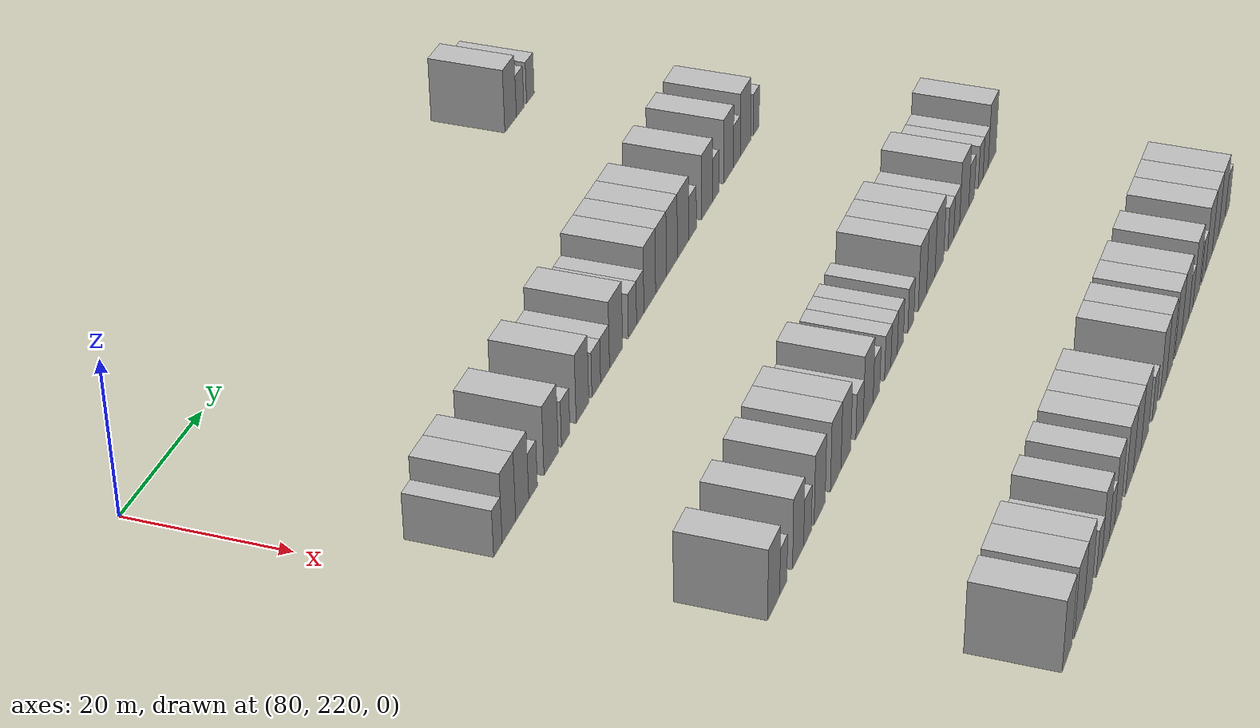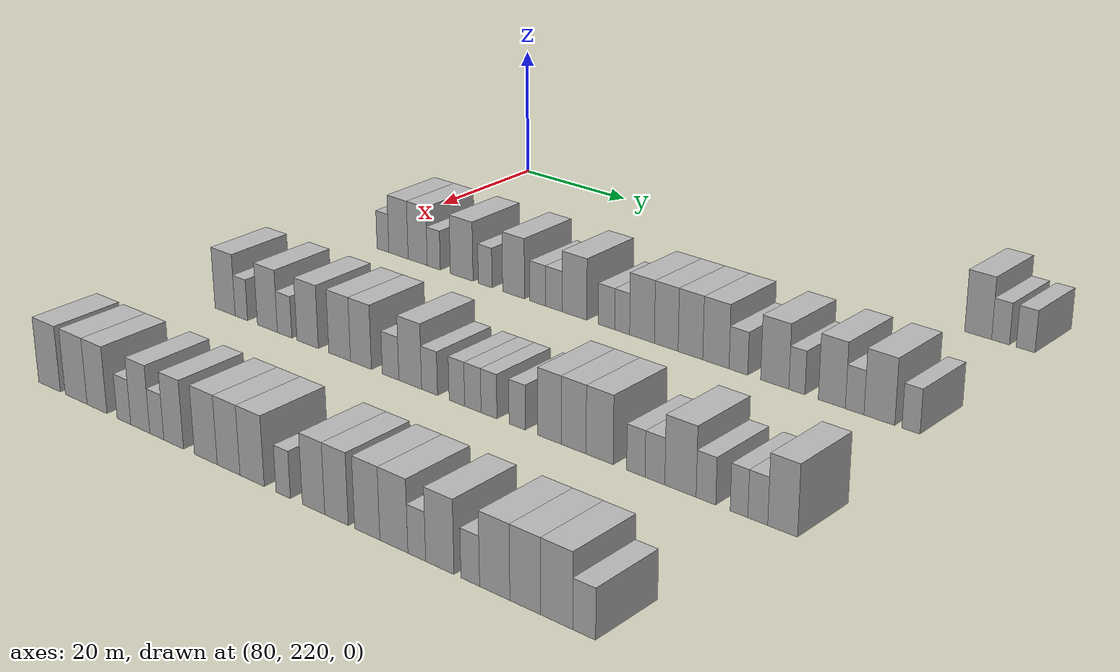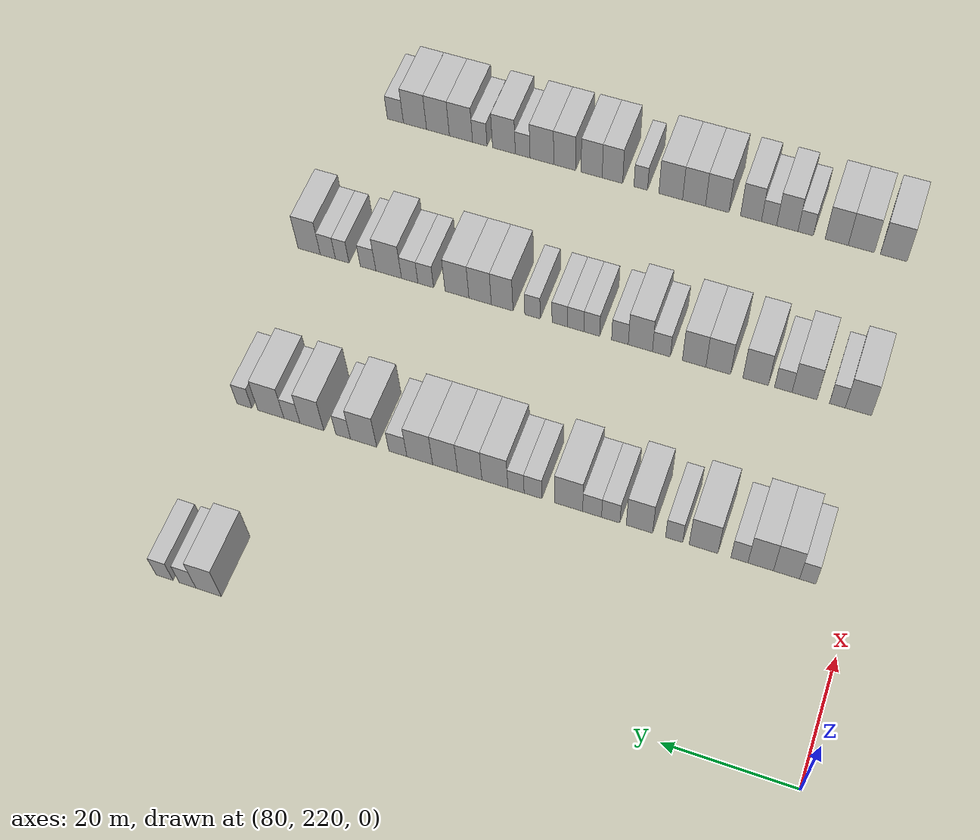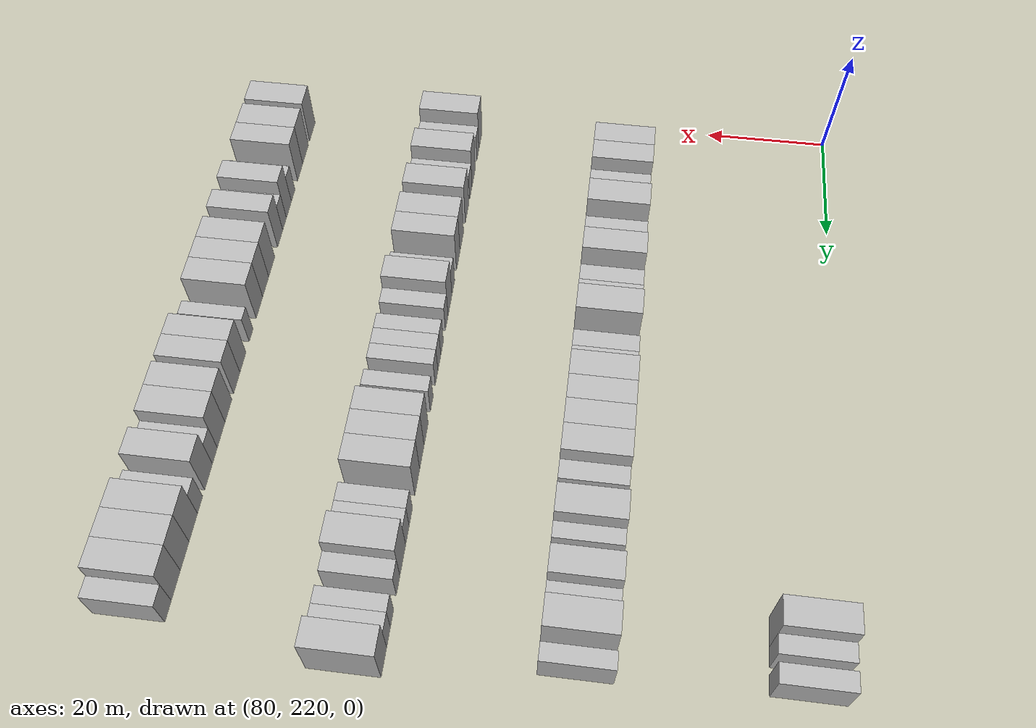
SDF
<sdf version="1.6">
 <world name="default">
  <model name="building_647">
   <static>1</static>
   <pose>85.0000 308.9514 0 0.000000 0.000000 0.000000</pose>
   <link name="link">
    <pose>0 0 4.50 0 0 0</pose>
    <collision name="collision"><geometry><box><size>10.0000 4.0807 9.0000</size></box></geometry></collision>
    <visual name="visual">
     <cast_shadows>0</cast_shadows>
     <geometry><box><size>10.0000 4.0807 9.0000</size></box></geometry>
     <material>
      <script>
       <uri>model://HANNAS_wall/materials/scripts</uri>
       <uri>model://HANNAS_wall/materials/textures</uri>
       <name>vrc/HANNAS_wall</name>
      </script>
     </material>
    </visual>
   </link>
  </model>
  <model name="building_648">
   <static>1</static>
   <pose>85.0000 312.3240 0 0.000000 0.000000 0.000000</pose>
   <link name="link">
    <pose>0 0 3.00 0 0 0</pose>
    <collision name="collision"><geometry><box><size>10.0000 2.6644 6.0000</size></box></geometry></collision>
    <visual name="visual">
     <cast_shadows>0</cast_shadows>
     <geometry><box><size>10.0000 2.6644 6.0000</size></box></geometry>
     <material>
      <script>
       <uri>model://HANNAS_wall/materials/scripts</uri>
       <uri>model://HANNAS_wall/materials/textures</uri>
       <name>vrc/HANNAS_wall</name>
      </script>
     </material>
    </visual>
   </link>
  </model>
  <model name="building_649">
   <static>1</static>
   <pose>85.0000 316.0347 0 0.000000 0.000000 0.000000</pose>
   <link name="link">
    <pose>0 0 3.00 0 0 0</pose>
    <collision name="collision"><geometry><box><size>10.0000 2.7570 6.0000</size></box></geometry></collision>
    <visual name="visual">
     <cast_shadows>0</cast_shadows>
     <geometry><box><size>10.0000 2.7570 6.0000</size></box></geometry>
     <material>
      <script>
       <uri>model://HANNAS_wall/materials/scripts</uri>
       <uri>model://HANNAS_wall/materials/textures</uri>
       <name>vrc/HANNAS_wall</name>
      </script>
     </material>
    </visual>
   </link>
  </model>
  <model name="building_856">
   <static>1</static>
   <pose>115.0000 226.7632 0 0.000000 0.000000 0.000000</pose>
   <link name="link">
    <pose>0 0 3.00 0 0 0</pose>
    <collision name="collision"><geometry><box><size>10.0000 2.4552 6.0000</size></box></geometry></collision>
    <visual name="visual">
     <cast_shadows>0</cast_shadows>
     <geometry><box><size>10.0000 2.4552 6.0000</size></box></geometry>
     <material>
      <script>
       <uri>model://HANNAS_wall/materials/scripts</uri>
       <uri>model://HANNAS_wall/materials/textures</uri>
       <name>vrc/HANNAS_wall</name>
      </script>
     </material>
    </visual>
   </link>
  </model>
  <model name="building_857">
   <static>1</static>
   <pose>115.0000 229.9746 0 0.000000 0.000000 0.000000</pose>
   <link name="link">
    <pose>0 0 4.50 0 0 0</pose>
    <collision name="collision"><geometry><box><size>10.0000 3.9674 9.0000</size></box></geometry></collision>
    <visual name="visual">
     <cast_shadows>0</cast_shadows>
     <geometry><box><size>10.0000 3.9674 9.0000</size></box></geometry>
     <material>
      <script>
       <uri>model://HANNAS_wall/materials/scripts</uri>
       <uri>model://HANNAS_wall/materials/textures</uri>
       <name>vrc/HANNAS_wall</name>
      </script>
     </material>
    </visual>
   </link>
  </model>
  <model name="building_858">
   <static>1</static>
   <pose>115.0000 233.8958 0 0.000000 0.000000 0.000000</pose>
   <link name="link">
    <pose>0 0 4.50 0 0 0</pose>
    <collision name="collision"><geometry><box><size>10.0000 3.8749 9.0000</size></box></geometry></collision>
    <visual name="visual">
     <cast_shadows>0</cast_shadows>
     <geometry><box><size>10.0000 3.8749 9.0000</size></box></geometry>
     <material>
      <script>
       <uri>model://HANNAS_wall/materials/scripts</uri>
       <uri>model://HANNAS_wall/materials/textures</uri>
       <name>vrc/HANNAS_wall</name>
      </script>
     </material>
    </visual>
   </link>
  </model>
  <model name="building_859">
   <static>1</static>
   <pose>115.0000 237.1375 0 0.000000 0.000000 0.000000</pose>
   <link name="link">
    <pose>0 0 3.00 0 0 0</pose>
    <collision name="collision"><geometry><box><size>10.0000 2.6086 6.0000</size></box></geometry></collision>
    <visual name="visual">
     <cast_shadows>0</cast_shadows>
     <geometry><box><size>10.0000 2.6086 6.0000</size></box></geometry>
     <material>
      <script>
       <uri>model://HANNAS_wall/materials/scripts</uri>
       <uri>model://HANNAS_wall/materials/textures</uri>
       <name>vrc/HANNAS_wall</name>
      </script>
     </material>
    </visual>
   </link>
  </model>
  <model name="building_860">
   <static>1</static>
   <pose>115.0000 242.6604 0 0.000000 0.000000 0.000000</pose>
   <link name="link">
    <pose>0 0 4.50 0 0 0</pose>
    <collision name="collision"><geometry><box><size>10.0000 4.4372 9.0000</size></box></geometry></collision>
    <visual name="visual">
     <cast_shadows>0</cast_shadows>
     <geometry><box><size>10.0000 4.4372 9.0000</size></box></geometry>
     <material>
      <script>
       <uri>model://HANNAS_wall/materials/scripts</uri>
       <uri>model://HANNAS_wall/materials/textures</uri>
       <name>vrc/HANNAS_wall</name>
      </script>
     </material>
    </visual>
   </link>
  </model>
  <model name="building_861">
   <static>1</static>
   <pose>115.0000 247.2093 0 0.000000 0.000000 0.000000</pose>
   <link name="link">
    <pose>0 0 3.00 0 0 0</pose>
    <collision name="collision"><geometry><box><size>10.0000 2.6608 6.0000</size></box></geometry></collision>
    <visual name="visual">
     <cast_shadows>0</cast_shadows>
     <geometry><box><size>10.0000 2.6608 6.0000</size></box></geometry>
     <material>
      <script>
       <uri>model://HANNAS_wall/materials/scripts</uri>
       <uri>model://HANNAS_wall/materials/textures</uri>
       <name>vrc/HANNAS_wall</name>
      </script>
     </material>
    </visual>
   </link>
  </model>
  <model name="building_862">
   <static>1</static>
   <pose>115.0000 252.5965 0 0.000000 0.000000 0.000000</pose>
   <link name="link">
    <pose>0 0 4.50 0 0 0</pose>
    <collision name="collision"><geometry><box><size>10.0000 4.1137 9.0000</size></box></geometry></collision>
    <visual name="visual">
     <cast_shadows>0</cast_shadows>
     <geometry><box><size>10.0000 4.1137 9.0000</size></box></geometry>
     <material>
      <script>
       <uri>model://HANNAS_wall/materials/scripts</uri>
       <uri>model://HANNAS_wall/materials/textures</uri>
       <name>vrc/HANNAS_wall</name>
      </script>
     </material>
    </visual>
   </link>
  </model>
  <model name="building_863">
   <static>1</static>
   <pose>115.0000 257.0937 0 0.000000 0.000000 0.000000</pose>
   <link name="link">
    <pose>0 0 3.00 0 0 0</pose>
    <collision name="collision"><geometry><box><size>10.0000 2.8806 6.0000</size></box></geometry></collision>
    <visual name="visual">
     <cast_shadows>0</cast_shadows>
     <geometry><box><size>10.0000 2.8806 6.0000</size></box></geometry>
     <material>
      <script>
       <uri>model://HANNAS_wall/materials/scripts</uri>
       <uri>model://HANNAS_wall/materials/textures</uri>
       <name>vrc/HANNAS_wall</name>
      </script>
     </material>
    </visual>
   </link>
  </model>
  <model name="building_864">
   <static>1</static>
   <pose>115.0000 260.0220 0 0.000000 0.000000 0.000000</pose>
   <link name="link">
    <pose>0 0 3.00 0 0 0</pose>
    <collision name="collision"><geometry><box><size>10.0000 2.9761 6.0000</size></box></geometry></collision>
    <visual name="visual">
     <cast_shadows>0</cast_shadows>
     <geometry><box><size>10.0000 2.9761 6.0000</size></box></geometry>
     <material>
      <script>
       <uri>model://HANNAS_wall/materials/scripts</uri>
       <uri>model://HANNAS_wall/materials/textures</uri>
       <name>vrc/HANNAS_wall</name>
      </script>
     </material>
    </visual>
   </link>
  </model>
  <model name="building_865">
   <static>1</static>
   <pose>115.0000 263.7411 0 0.000000 0.000000 0.000000</pose>
   <link name="link">
    <pose>0 0 4.50 0 0 0</pose>
    <collision name="collision"><geometry><box><size>10.0000 4.4622 9.0000</size></box></geometry></collision>
    <visual name="visual">
     <cast_shadows>0</cast_shadows>
     <geometry><box><size>10.0000 4.4622 9.0000</size></box></geometry>
     <material>
      <script>
       <uri>model://HANNAS_wall/materials/scripts</uri>
       <uri>model://HANNAS_wall/materials/textures</uri>
       <name>vrc/HANNAS_wall</name>
      </script>
     </material>
    </visual>
   </link>
  </model>
  <model name="building_866">
   <static>1</static>
   <pose>115.0000 269.4025 0 0.000000 0.000000 0.000000</pose>
   <link name="link">
    <pose>0 0 3.00 0 0 0</pose>
    <collision name="collision"><geometry><box><size>10.0000 2.8605 6.0000</size></box></geometry></collision>
    <visual name="visual">
     <cast_shadows>0</cast_shadows>
     <geometry><box><size>10.0000 2.8605 6.0000</size></box></geometry>
     <material>
      <script>
       <uri>model://HANNAS_wall/materials/scripts</uri>
       <uri>model://HANNAS_wall/materials/textures</uri>
       <name>vrc/HANNAS_wall</name>
      </script>
     </material>
    </visual>
   </link>
  </model>
  <model name="building_867">
   <static>1</static>
   <pose>115.0000 272.1281 0 0.000000 0.000000 0.000000</pose>
   <link name="link">
    <pose>0 0 3.00 0 0 0</pose>
    <collision name="collision"><geometry><box><size>10.0000 2.5907 6.0000</size></box></geometry></collision>
    <visual name="visual">
     <cast_shadows>0</cast_shadows>
     <geometry><box><size>10.0000 2.5907 6.0000</size></box></geometry>
     <material>
      <script>
       <uri>model://HANNAS_wall/materials/scripts</uri>
       <uri>model://HANNAS_wall/materials/textures</uri>
       <name>vrc/HANNAS_wall</name>
      </script>
     </material>
    </visual>
   </link>
  </model>
  <model name="building_868">
   <static>1</static>
   <pose>115.0000 275.5215 0 0.000000 0.000000 0.000000</pose>
   <link name="link">
    <pose>0 0 4.50 0 0 0</pose>
    <collision name="collision"><geometry><box><size>10.0000 4.1961 9.0000</size></box></geometry></collision>
    <visual name="visual">
     <cast_shadows>0</cast_shadows>
     <geometry><box><size>10.0000 4.1961 9.0000</size></box></geometry>
     <material>
      <script>
       <uri>model://HANNAS_wall/materials/scripts</uri>
       <uri>model://HANNAS_wall/materials/textures</uri>
       <name>vrc/HANNAS_wall</name>
      </script>
     </material>
    </visual>
   </link>
  </model>
  <model name="building_869">
   <static>1</static>
   <pose>115.0000 279.5960 0 0.000000 0.000000 0.000000</pose>
   <link name="link">
    <pose>0 0 4.50 0 0 0</pose>
    <collision name="collision"><geometry><box><size>10.0000 3.9527 9.0000</size></box></geometry></collision>
    <visual name="visual">
     <cast_shadows>0</cast_shadows>
     <geometry><box><size>10.0000 3.9527 9.0000</size></box></geometry>
     <material>
      <script>
       <uri>model://HANNAS_wall/materials/scripts</uri>
       <uri>model://HANNAS_wall/materials/textures</uri>
       <name>vrc/HANNAS_wall</name>
      </script>
     </material>
    </visual>
   </link>
  </model>
  <model name="building_870">
   <static>1</static>
   <pose>115.0000 283.5962 0 0.000000 0.000000 0.000000</pose>
   <link name="link">
    <pose>0 0 4.50 0 0 0</pose>
    <collision name="collision"><geometry><box><size>10.0000 4.0478 9.0000</size></box></geometry></collision>
    <visual name="visual">
     <cast_shadows>0</cast_shadows>
     <geometry><box><size>10.0000 4.0478 9.0000</size></box></geometry>
     <material>
      <script>
       <uri>model://HANNAS_wall/materials/scripts</uri>
       <uri>model://HANNAS_wall/materials/textures</uri>
       <name>vrc/HANNAS_wall</name>
      </script>
     </material>
    </visual>
   </link>
  </model>
  <model name="building_871">
   <static>1</static>
   <pose>115.0000 287.7335 0 0.000000 0.000000 0.000000</pose>
   <link name="link">
    <pose>0 0 4.50 0 0 0</pose>
    <collision name="collision"><geometry><box><size>10.0000 4.2268 9.0000</size></box></geometry></collision>
    <visual name="visual">
     <cast_shadows>0</cast_shadows>
     <geometry><box><size>10.0000 4.2268 9.0000</size></box></geometry>
     <material>
      <script>
       <uri>model://HANNAS_wall/materials/scripts</uri>
       <uri>model://HANNAS_wall/materials/textures</uri>
       <name>vrc/HANNAS_wall</name>
      </script>
     </material>
    </visual>
   </link>
  </model>
  <model name="building_872">
   <static>1</static>
   <pose>115.0000 291.3306 0 0.000000 0.000000 0.000000</pose>
   <link name="link">
    <pose>0 0 3.00 0 0 0</pose>
    <collision name="collision"><geometry><box><size>10.0000 2.9673 6.0000</size></box></geometry></collision>
    <visual name="visual">
     <cast_shadows>0</cast_shadows>
     <geometry><box><size>10.0000 2.9673 6.0000</size></box></geometry>
     <material>
      <script>
       <uri>model://HANNAS_wall/materials/scripts</uri>
       <uri>model://HANNAS_wall/materials/textures</uri>
       <name>vrc/HANNAS_wall</name>
      </script>
     </material>
    </visual>
   </link>
  </model>
  <model name="building_873">
   <static>1</static>
   <pose>115.0000 296.9911 0 0.000000 0.000000 0.000000</pose>
   <link name="link">
    <pose>0 0 4.50 0 0 0</pose>
    <collision name="collision"><geometry><box><size>10.0000 4.3538 9.0000</size></box></geometry></collision>
    <visual name="visual">
     <cast_shadows>0</cast_shadows>
     <geometry><box><size>10.0000 4.3538 9.0000</size></box></geometry>
     <material>
      <script>
       <uri>model://HANNAS_wall/materials/scripts</uri>
       <uri>model://HANNAS_wall/materials/textures</uri>
       <name>vrc/HANNAS_wall</name>
      </script>
     </material>
    </visual>
   </link>
  </model>
  <model name="building_874">
   <static>1</static>
   <pose>115.0000 300.3920 0 0.000000 0.000000 0.000000</pose>
   <link name="link">
    <pose>0 0 3.00 0 0 0</pose>
    <collision name="collision"><geometry><box><size>10.0000 2.4480 6.0000</size></box></geometry></collision>
    <visual name="visual">
     <cast_shadows>0</cast_shadows>
     <geometry><box><size>10.0000 2.4480 6.0000</size></box></geometry>
     <material>
      <script>
       <uri>model://HANNAS_wall/materials/scripts</uri>
       <uri>model://HANNAS_wall/materials/textures</uri>
       <name>vrc/HANNAS_wall</name>
      </script>
     </material>
    </visual>
   </link>
  </model>
  <model name="building_875">
   <static>1</static>
   <pose>115.0000 305.6148 0 0.000000 0.000000 0.000000</pose>
   <link name="link">
    <pose>0 0 4.50 0 0 0</pose>
    <collision name="collision"><geometry><box><size>10.0000 3.9977 9.0000</size></box></geometry></collision>
    <visual name="visual">
     <cast_shadows>0</cast_shadows>
     <geometry><box><size>10.0000 3.9977 9.0000</size></box></geometry>
     <material>
      <script>
       <uri>model://HANNAS_wall/materials/scripts</uri>
       <uri>model://HANNAS_wall/materials/textures</uri>
       <name>vrc/HANNAS_wall</name>
      </script>
     </material>
    </visual>
   </link>
  </model>
  <model name="building_876">
   <static>1</static>
   <pose>115.0000 308.9715 0 0.000000 0.000000 0.000000</pose>
   <link name="link">
    <pose>0 0 3.00 0 0 0</pose>
    <collision name="collision"><geometry><box><size>10.0000 2.7156 6.0000</size></box></geometry></collision>
    <visual name="visual">
     <cast_shadows>0</cast_shadows>
     <geometry><box><size>10.0000 2.7156 6.0000</size></box></geometry>
     <material>
      <script>
       <uri>model://HANNAS_wall/materials/scripts</uri>
       <uri>model://HANNAS_wall/materials/textures</uri>
       <name>vrc/HANNAS_wall</name>
      </script>
     </material>
    </visual>
   </link>
  </model>
  <model name="building_877">
   <static>1</static>
   <pose>115.0000 312.5354 0 0.000000 0.000000 0.000000</pose>
   <link name="link">
    <pose>0 0 4.50 0 0 0</pose>
    <collision name="collision"><geometry><box><size>10.0000 4.4123 9.0000</size></box></geometry></collision>
    <visual name="visual">
     <cast_shadows>0</cast_shadows>
     <geometry><box><size>10.0000 4.4123 9.0000</size></box></geometry>
     <material>
      <script>
       <uri>model://HANNAS_wall/materials/scripts</uri>
       <uri>model://HANNAS_wall/materials/textures</uri>
       <name>vrc/HANNAS_wall</name>
      </script>
     </material>
    </visual>
   </link>
  </model>
  <model name="building_878">
   <static>1</static>
   <pose>115.0000 317.0194 0 0.000000 0.000000 0.000000</pose>
   <link name="link">
    <pose>0 0 3.00 0 0 0</pose>
    <collision name="collision"><geometry><box><size>10.0000 2.5556 6.0000</size></box></geometry></collision>
    <visual name="visual">
     <cast_shadows>0</cast_shadows>
     <geometry><box><size>10.0000 2.5556 6.0000</size></box></geometry>
     <material>
      <script>
       <uri>model://HANNAS_wall/materials/scripts</uri>
       <uri>model://HANNAS_wall/materials/textures</uri>
       <name>vrc/HANNAS_wall</name>
      </script>
     </material>
    </visual>
   </link>
  </model>
  <model name="building_1080">
   <static>1</static>
   <pose>145.0000 226.4275 0 0.000000 0.000000 0.000000</pose>
   <link name="link">
    <pose>0 0 4.50 0 0 0</pose>
    <collision name="collision"><geometry><box><size>10.0000 4.1863 9.0000</size></box></geometry></collision>
    <visual name="visual">
     <cast_shadows>0</cast_shadows>
     <geometry><box><size>10.0000 4.1863 9.0000</size></box></geometry>
     <material>
      <script>
       <uri>model://HANNAS_wall/materials/scripts</uri>
       <uri>model://HANNAS_wall/materials/textures</uri>
       <name>vrc/HANNAS_wall</name>
      </script>
     </material>
    </visual>
   </link>
  </model>
  <model name="building_1081">
   <static>1</static>
   <pose>145.0000 229.7834 0 0.000000 0.000000 0.000000</pose>
   <link name="link">
    <pose>0 0 3.00 0 0 0</pose>
    <collision name="collision"><geometry><box><size>10.0000 2.5255 6.0000</size></box></geometry></collision>
    <visual name="visual">
     <cast_shadows>0</cast_shadows>
     <geometry><box><size>10.0000 2.5255 6.0000</size></box></geometry>
     <material>
      <script>
       <uri>model://HANNAS_wall/materials/scripts</uri>
       <uri>model://HANNAS_wall/materials/textures</uri>
       <name>vrc/HANNAS_wall</name>
      </script>
     </material>
    </visual>
   </link>
  </model>
  <model name="building_1082">
   <static>1</static>
   <pose>145.0000 235.0515 0 0.000000 0.000000 0.000000</pose>
   <link name="link">
    <pose>0 0 4.50 0 0 0</pose>
    <collision name="collision"><geometry><box><size>10.0000 4.0107 9.0000</size></box></geometry></collision>
    <visual name="visual">
     <cast_shadows>0</cast_shadows>
     <geometry><box><size>10.0000 4.0107 9.0000</size></box></geometry>
     <material>
      <script>
       <uri>model://HANNAS_wall/materials/scripts</uri>
       <uri>model://HANNAS_wall/materials/textures</uri>
       <name>vrc/HANNAS_wall</name>
      </script>
     </material>
    </visual>
   </link>
  </model>
  <model name="building_1083">
   <static>1</static>
   <pose>145.0000 238.4761 0 0.000000 0.000000 0.000000</pose>
   <link name="link">
    <pose>0 0 3.00 0 0 0</pose>
    <collision name="collision"><geometry><box><size>10.0000 2.8385 6.0000</size></box></geometry></collision>
    <visual name="visual">
     <cast_shadows>0</cast_shadows>
     <geometry><box><size>10.0000 2.8385 6.0000</size></box></geometry>
     <material>
      <script>
       <uri>model://HANNAS_wall/materials/scripts</uri>
       <uri>model://HANNAS_wall/materials/textures</uri>
       <name>vrc/HANNAS_wall</name>
      </script>
     </material>
    </visual>
   </link>
  </model>
  <model name="building_1084">
   <static>1</static>
   <pose>145.0000 242.9660 0 0.000000 0.000000 0.000000</pose>
   <link name="link">
    <pose>0 0 4.50 0 0 0</pose>
    <collision name="collision"><geometry><box><size>10.0000 4.1413 9.0000</size></box></geometry></collision>
    <visual name="visual">
     <cast_shadows>0</cast_shadows>
     <geometry><box><size>10.0000 4.1413 9.0000</size></box></geometry>
     <material>
      <script>
       <uri>model://HANNAS_wall/materials/scripts</uri>
       <uri>model://HANNAS_wall/materials/textures</uri>
       <name>vrc/HANNAS_wall</name>
      </script>
     </material>
    </visual>
   </link>
  </model>
  <model name="building_1085">
   <static>1</static>
   <pose>145.0000 249.0721 0 0.000000 0.000000 0.000000</pose>
   <link name="link">
    <pose>0 0 4.50 0 0 0</pose>
    <collision name="collision"><geometry><box><size>10.0000 4.0710 9.0000</size></box></geometry></collision>
    <visual name="visual">
     <cast_shadows>0</cast_shadows>
     <geometry><box><size>10.0000 4.0710 9.0000</size></box></geometry>
     <material>
      <script>
       <uri>model://HANNAS_wall/materials/scripts</uri>
       <uri>model://HANNAS_wall/materials/textures</uri>
       <name>vrc/HANNAS_wall</name>
      </script>
     </material>
    </visual>
   </link>
  </model>
  <model name="building_1086">
   <static>1</static>
   <pose>145.0000 253.0401 0 0.000000 0.000000 0.000000</pose>
   <link name="link">
    <pose>0 0 4.50 0 0 0</pose>
    <collision name="collision"><geometry><box><size>10.0000 3.8650 9.0000</size></box></geometry></collision>
    <visual name="visual">
     <cast_shadows>0</cast_shadows>
     <geometry><box><size>10.0000 3.8650 9.0000</size></box></geometry>
     <material>
      <script>
       <uri>model://HANNAS_wall/materials/scripts</uri>
       <uri>model://HANNAS_wall/materials/textures</uri>
       <name>vrc/HANNAS_wall</name>
      </script>
     </material>
    </visual>
   </link>
  </model>
  <model name="building_1087">
   <static>1</static>
   <pose>145.0000 258.4534 0 0.000000 0.000000 0.000000</pose>
   <link name="link">
    <pose>0 0 3.00 0 0 0</pose>
    <collision name="collision"><geometry><box><size>10.0000 2.9616 6.0000</size></box></geometry></collision>
    <visual name="visual">
     <cast_shadows>0</cast_shadows>
     <geometry><box><size>10.0000 2.9616 6.0000</size></box></geometry>
     <material>
      <script>
       <uri>model://HANNAS_wall/materials/scripts</uri>
       <uri>model://HANNAS_wall/materials/textures</uri>
       <name>vrc/HANNAS_wall</name>
      </script>
     </material>
    </visual>
   </link>
  </model>
  <model name="building_1088">
   <static>1</static>
   <pose>145.0000 261.9485 0 0.000000 0.000000 0.000000</pose>
   <link name="link">
    <pose>0 0 4.50 0 0 0</pose>
    <collision name="collision"><geometry><box><size>10.0000 4.0285 9.0000</size></box></geometry></collision>
    <visual name="visual">
     <cast_shadows>0</cast_shadows>
     <geometry><box><size>10.0000 4.0285 9.0000</size></box></geometry>
     <material>
      <script>
       <uri>model://HANNAS_wall/materials/scripts</uri>
       <uri>model://HANNAS_wall/materials/textures</uri>
       <name>vrc/HANNAS_wall</name>
      </script>
     </material>
    </visual>
   </link>
  </model>
  <model name="building_1089">
   <static>1</static>
   <pose>145.0000 265.3528 0 0.000000 0.000000 0.000000</pose>
   <link name="link">
    <pose>0 0 3.00 0 0 0</pose>
    <collision name="collision"><geometry><box><size>10.0000 2.7803 6.0000</size></box></geometry></collision>
    <visual name="visual">
     <cast_shadows>0</cast_shadows>
     <geometry><box><size>10.0000 2.7803 6.0000</size></box></geometry>
     <material>
      <script>
       <uri>model://HANNAS_wall/materials/scripts</uri>
       <uri>model://HANNAS_wall/materials/textures</uri>
       <name>vrc/HANNAS_wall</name>
      </script>
     </material>
    </visual>
   </link>
  </model>
  <model name="building_1090">
   <static>1</static>
   <pose>145.0000 270.0691 0 0.000000 0.000000 0.000000</pose>
   <link name="link">
    <pose>0 0 3.00 0 0 0</pose>
    <collision name="collision"><geometry><box><size>10.0000 2.6522 6.0000</size></box></geometry></collision>
    <visual name="visual">
     <cast_shadows>0</cast_shadows>
     <geometry><box><size>10.0000 2.6522 6.0000</size></box></geometry>
     <material>
      <script>
       <uri>model://HANNAS_wall/materials/scripts</uri>
       <uri>model://HANNAS_wall/materials/textures</uri>
       <name>vrc/HANNAS_wall</name>
      </script>
     </material>
    </visual>
   </link>
  </model>
  <model name="building_1091">
   <static>1</static>
   <pose>145.0000 272.7762 0 0.000000 0.000000 0.000000</pose>
   <link name="link">
    <pose>0 0 3.00 0 0 0</pose>
    <collision name="collision"><geometry><box><size>10.0000 2.7621 6.0000</size></box></geometry></collision>
    <visual name="visual">
     <cast_shadows>0</cast_shadows>
     <geometry><box><size>10.0000 2.7621 6.0000</size></box></geometry>
     <material>
      <script>
       <uri>model://HANNAS_wall/materials/scripts</uri>
       <uri>model://HANNAS_wall/materials/textures</uri>
       <name>vrc/HANNAS_wall</name>
      </script>
     </material>
    </visual>
   </link>
  </model>
  <model name="building_1092">
   <static>1</static>
   <pose>145.0000 275.4753 0 0.000000 0.000000 0.000000</pose>
   <link name="link">
    <pose>0 0 3.00 0 0 0</pose>
    <collision name="collision"><geometry><box><size>10.0000 2.6361 6.0000</size></box></geometry></collision>
    <visual name="visual">
     <cast_shadows>0</cast_shadows>
     <geometry><box><size>10.0000 2.6361 6.0000</size></box></geometry>
     <material>
      <script>
       <uri>model://HANNAS_wall/materials/scripts</uri>
       <uri>model://HANNAS_wall/materials/textures</uri>
       <name>vrc/HANNAS_wall</name>
      </script>
     </material>
    </visual>
   </link>
  </model>
  <model name="building_1093">
   <static>1</static>
   <pose>145.0000 280.1144 0 0.000000 0.000000 0.000000</pose>
   <link name="link">
    <pose>0 0 3.00 0 0 0</pose>
    <collision name="collision"><geometry><box><size>10.0000 2.6420 6.0000</size></box></geometry></collision>
    <visual name="visual">
     <cast_shadows>0</cast_shadows>
     <geometry><box><size>10.0000 2.6420 6.0000</size></box></geometry>
     <material>
      <script>
       <uri>model://HANNAS_wall/materials/scripts</uri>
       <uri>model://HANNAS_wall/materials/textures</uri>
       <name>vrc/HANNAS_wall</name>
      </script>
     </material>
    </visual>
   </link>
  </model>
  <model name="building_1094">
   <static>1</static>
   <pose>145.0000 285.2986 0 0.000000 0.000000 0.000000</pose>
   <link name="link">
    <pose>0 0 4.50 0 0 0</pose>
    <collision name="collision"><geometry><box><size>10.0000 3.7265 9.0000</size></box></geometry></collision>
    <visual name="visual">
     <cast_shadows>0</cast_shadows>
     <geometry><box><size>10.0000 3.7265 9.0000</size></box></geometry>
     <material>
      <script>
       <uri>model://HANNAS_wall/materials/scripts</uri>
       <uri>model://HANNAS_wall/materials/textures</uri>
       <name>vrc/HANNAS_wall</name>
      </script>
     </material>
    </visual>
   </link>
  </model>
  <model name="building_1095">
   <static>1</static>
   <pose>145.0000 289.0956 0 0.000000 0.000000 0.000000</pose>
   <link name="link">
    <pose>0 0 4.50 0 0 0</pose>
    <collision name="collision"><geometry><box><size>10.0000 3.8677 9.0000</size></box></geometry></collision>
    <visual name="visual">
     <cast_shadows>0</cast_shadows>
     <geometry><box><size>10.0000 3.8677 9.0000</size></box></geometry>
     <material>
      <script>
       <uri>model://HANNAS_wall/materials/scripts</uri>
       <uri>model://HANNAS_wall/materials/textures</uri>
       <name>vrc/HANNAS_wall</name>
      </script>
     </material>
    </visual>
   </link>
  </model>
  <model name="building_1096">
   <static>1</static>
   <pose>145.0000 293.0964 0 0.000000 0.000000 0.000000</pose>
   <link name="link">
    <pose>0 0 4.50 0 0 0</pose>
    <collision name="collision"><geometry><box><size>10.0000 4.1339 9.0000</size></box></geometry></collision>
    <visual name="visual">
     <cast_shadows>0</cast_shadows>
     <geometry><box><size>10.0000 4.1339 9.0000</size></box></geometry>
     <material>
      <script>
       <uri>model://HANNAS_wall/materials/scripts</uri>
       <uri>model://HANNAS_wall/materials/textures</uri>
       <name>vrc/HANNAS_wall</name>
      </script>
     </material>
    </visual>
   </link>
  </model>
  <model name="building_1097">
   <static>1</static>
   <pose>145.0000 298.5282 0 0.000000 0.000000 0.000000</pose>
   <link name="link">
    <pose>0 0 3.00 0 0 0</pose>
    <collision name="collision"><geometry><box><size>10.0000 2.7296 6.0000</size></box></geometry></collision>
    <visual name="visual">
     <cast_shadows>0</cast_shadows>
     <geometry><box><size>10.0000 2.7296 6.0000</size></box></geometry>
     <material>
      <script>
       <uri>model://HANNAS_wall/materials/scripts</uri>
       <uri>model://HANNAS_wall/materials/textures</uri>
       <name>vrc/HANNAS_wall</name>
      </script>
     </material>
    </visual>
   </link>
  </model>
  <model name="building_1098">
   <static>1</static>
   <pose>145.0000 301.3349 0 0.000000 0.000000 0.000000</pose>
   <link name="link">
    <pose>0 0 3.00 0 0 0</pose>
    <collision name="collision"><geometry><box><size>10.0000 2.8839 6.0000</size></box></geometry></collision>
    <visual name="visual">
     <cast_shadows>0</cast_shadows>
     <geometry><box><size>10.0000 2.8839 6.0000</size></box></geometry>
     <material>
      <script>
       <uri>model://HANNAS_wall/materials/scripts</uri>
       <uri>model://HANNAS_wall/materials/textures</uri>
       <name>vrc/HANNAS_wall</name>
      </script>
     </material>
    </visual>
   </link>
  </model>
  <model name="building_1099">
   <static>1</static>
   <pose>145.0000 305.0265 0 0.000000 0.000000 0.000000</pose>
   <link name="link">
    <pose>0 0 4.50 0 0 0</pose>
    <collision name="collision"><geometry><box><size>10.0000 4.4992 9.0000</size></box></geometry></collision>
    <visual name="visual">
     <cast_shadows>0</cast_shadows>
     <geometry><box><size>10.0000 4.4992 9.0000</size></box></geometry>
     <material>
      <script>
       <uri>model://HANNAS_wall/materials/scripts</uri>
       <uri>model://HANNAS_wall/materials/textures</uri>
       <name>vrc/HANNAS_wall</name>
      </script>
     </material>
    </visual>
   </link>
  </model>
  <model name="building_1100">
   <static>1</static>
   <pose>145.0000 308.6566 0 0.000000 0.000000 0.000000</pose>
   <link name="link">
    <pose>0 0 3.00 0 0 0</pose>
    <collision name="collision"><geometry><box><size>10.0000 2.7610 6.0000</size></box></geometry></collision>
    <visual name="visual">
     <cast_shadows>0</cast_shadows>
     <geometry><box><size>10.0000 2.7610 6.0000</size></box></geometry>
     <material>
      <script>
       <uri>model://HANNAS_wall/materials/scripts</uri>
       <uri>model://HANNAS_wall/materials/textures</uri>
       <name>vrc/HANNAS_wall</name>
      </script>
     </material>
    </visual>
   </link>
  </model>
  <model name="building_1101">
   <static>1</static>
   <pose>145.0000 313.2488 0 0.000000 0.000000 0.000000</pose>
   <link name="link">
    <pose>0 0 3.00 0 0 0</pose>
    <collision name="collision"><geometry><box><size>10.0000 2.4233 6.0000</size></box></geometry></collision>
    <visual name="visual">
     <cast_shadows>0</cast_shadows>
     <geometry><box><size>10.0000 2.4233 6.0000</size></box></geometry>
     <material>
      <script>
       <uri>model://HANNAS_wall/materials/scripts</uri>
       <uri>model://HANNAS_wall/materials/textures</uri>
       <name>vrc/HANNAS_wall</name>
      </script>
     </material>
    </visual>
   </link>
  </model>
  <model name="building_1102">
   <static>1</static>
   <pose>145.0000 315.8105 0 0.000000 0.000000 0.000000</pose>
   <link name="link">
    <pose>0 0 3.00 0 0 0</pose>
    <collision name="collision"><geometry><box><size>10.0000 2.7001 6.0000</size></box></geometry></collision>
    <visual name="visual">
     <cast_shadows>0</cast_shadows>
     <geometry><box><size>10.0000 2.7001 6.0000</size></box></geometry>
     <material>
      <script>
       <uri>model://HANNAS_wall/materials/scripts</uri>
       <uri>model://HANNAS_wall/materials/textures</uri>
       <name>vrc/HANNAS_wall</name>
      </script>
     </material>
    </visual>
   </link>
  </model>
  <model name="building_1103">
   <static>1</static>
   <pose>145.0000 319.1521 0 0.000000 0.000000 0.000000</pose>
   <link name="link">
    <pose>0 0 4.50 0 0 0</pose>
    <collision name="collision"><geometry><box><size>10.0000 3.9832 9.0000</size></box></geometry></collision>
    <visual name="visual">
     <cast_shadows>0</cast_shadows>
     <geometry><box><size>10.0000 3.9832 9.0000</size></box></geometry>
     <material>
      <script>
       <uri>model://HANNAS_wall/materials/scripts</uri>
       <uri>model://HANNAS_wall/materials/textures</uri>
       <name>vrc/HANNAS_wall</name>
      </script>
     </material>
    </visual>
   </link>
  </model>
  <model name="building_1305">
   <static>1</static>
   <pose>175.0000 227.7541 0 0.000000 0.000000 0.000000</pose>
   <link name="link">
    <pose>0 0 4.50 0 0 0</pose>
    <collision name="collision"><geometry><box><size>10.0000 4.4749 9.0000</size></box></geometry></collision>
    <visual name="visual">
     <cast_shadows>0</cast_shadows>
     <geometry><box><size>10.0000 4.4749 9.0000</size></box></geometry>
     <material>
      <script>
       <uri>model://HANNAS_wall/materials/scripts</uri>
       <uri>model://HANNAS_wall/materials/textures</uri>
       <name>vrc/HANNAS_wall</name>
      </script>
     </material>
    </visual>
   </link>
  </model>
  <model name="building_1306">
   <static>1</static>
   <pose>175.0000 233.2079 0 0.000000 0.000000 0.000000</pose>
   <link name="link">
    <pose>0 0 4.50 0 0 0</pose>
    <collision name="collision"><geometry><box><size>10.0000 4.4326 9.0000</size></box></geometry></collision>
    <visual name="visual">
     <cast_shadows>0</cast_shadows>
     <geometry><box><size>10.0000 4.4326 9.0000</size></box></geometry>
     <material>
      <script>
       <uri>model://HANNAS_wall/materials/scripts</uri>
       <uri>model://HANNAS_wall/materials/textures</uri>
       <name>vrc/HANNAS_wall</name>
      </script>
     </material>
    </visual>
   </link>
  </model>
  <model name="building_1307">
   <static>1</static>
   <pose>175.0000 237.3882 0 0.000000 0.000000 0.000000</pose>
   <link name="link">
    <pose>0 0 4.50 0 0 0</pose>
    <collision name="collision"><geometry><box><size>10.0000 3.9280 9.0000</size></box></geometry></collision>
    <visual name="visual">
     <cast_shadows>0</cast_shadows>
     <geometry><box><size>10.0000 3.9280 9.0000</size></box></geometry>
     <material>
      <script>
       <uri>model://HANNAS_wall/materials/scripts</uri>
       <uri>model://HANNAS_wall/materials/textures</uri>
       <name>vrc/HANNAS_wall</name>
      </script>
     </material>
    </visual>
   </link>
  </model>
  <model name="building_1308">
   <static>1</static>
   <pose>175.0000 242.6744 0 0.000000 0.000000 0.000000</pose>
   <link name="link">
    <pose>0 0 3.00 0 0 0</pose>
    <collision name="collision"><geometry><box><size>10.0000 2.6444 6.0000</size></box></geometry></collision>
    <visual name="visual">
     <cast_shadows>0</cast_shadows>
     <geometry><box><size>10.0000 2.6444 6.0000</size></box></geometry>
     <material>
      <script>
       <uri>model://HANNAS_wall/materials/scripts</uri>
       <uri>model://HANNAS_wall/materials/textures</uri>
       <name>vrc/HANNAS_wall</name>
      </script>
     </material>
    </visual>
   </link>
  </model>
  <model name="building_1309">
   <static>1</static>
   <pose>175.0000 245.8133 0 0.000000 0.000000 0.000000</pose>
   <link name="link">
    <pose>0 0 4.50 0 0 0</pose>
    <collision name="collision"><geometry><box><size>10.0000 3.6334 9.0000</size></box></geometry></collision>
    <visual name="visual">
     <cast_shadows>0</cast_shadows>
     <geometry><box><size>10.0000 3.6334 9.0000</size></box></geometry>
     <material>
      <script>
       <uri>model://HANNAS_wall/materials/scripts</uri>
       <uri>model://HANNAS_wall/materials/textures</uri>
       <name>vrc/HANNAS_wall</name>
      </script>
     </material>
    </visual>
   </link>
  </model>
  <model name="building_1310">
   <static>1</static>
   <pose>175.0000 248.9458 0 0.000000 0.000000 0.000000</pose>
   <link name="link">
    <pose>0 0 3.00 0 0 0</pose>
    <collision name="collision"><geometry><box><size>10.0000 2.6317 6.0000</size></box></geometry></collision>
    <visual name="visual">
     <cast_shadows>0</cast_shadows>
     <geometry><box><size>10.0000 2.6317 6.0000</size></box></geometry>
     <material>
      <script>
       <uri>model://HANNAS_wall/materials/scripts</uri>
       <uri>model://HANNAS_wall/materials/textures</uri>
       <name>vrc/HANNAS_wall</name>
      </script>
     </material>
    </visual>
   </link>
  </model>
  <model name="building_1311">
   <static>1</static>
   <pose>175.0000 252.0731 0 0.000000 0.000000 0.000000</pose>
   <link name="link">
    <pose>0 0 4.50 0 0 0</pose>
    <collision name="collision"><geometry><box><size>10.0000 3.6228 9.0000</size></box></geometry></collision>
    <visual name="visual">
     <cast_shadows>0</cast_shadows>
     <geometry><box><size>10.0000 3.6228 9.0000</size></box></geometry>
     <material>
      <script>
       <uri>model://HANNAS_wall/materials/scripts</uri>
       <uri>model://HANNAS_wall/materials/textures</uri>
       <name>vrc/HANNAS_wall</name>
      </script>
     </material>
    </visual>
   </link>
  </model>
  <model name="building_1312">
   <static>1</static>
   <pose>175.0000 257.9316 0 0.000000 0.000000 0.000000</pose>
   <link name="link">
    <pose>0 0 4.50 0 0 0</pose>
    <collision name="collision"><geometry><box><size>10.0000 4.0942 9.0000</size></box></geometry></collision>
    <visual name="visual">
     <cast_shadows>0</cast_shadows>
     <geometry><box><size>10.0000 4.0942 9.0000</size></box></geometry>
     <material>
      <script>
       <uri>model://HANNAS_wall/materials/scripts</uri>
       <uri>model://HANNAS_wall/materials/textures</uri>
       <name>vrc/HANNAS_wall</name>
      </script>
     </material>
    </visual>
   </link>
  </model>
  <model name="building_1313">
   <static>1</static>
   <pose>175.0000 261.9800 0 0.000000 0.000000 0.000000</pose>
   <link name="link">
    <pose>0 0 4.50 0 0 0</pose>
    <collision name="collision"><geometry><box><size>10.0000 4.0027 9.0000</size></box></geometry></collision>
    <visual name="visual">
     <cast_shadows>0</cast_shadows>
     <geometry><box><size>10.0000 4.0027 9.0000</size></box></geometry>
     <material>
      <script>
       <uri>model://HANNAS_wall/materials/scripts</uri>
       <uri>model://HANNAS_wall/materials/textures</uri>
       <name>vrc/HANNAS_wall</name>
      </script>
     </material>
    </visual>
   </link>
  </model>
  <model name="building_1314">
   <static>1</static>
   <pose>175.0000 266.0695 0 0.000000 0.000000 0.000000</pose>
   <link name="link">
    <pose>0 0 4.50 0 0 0</pose>
    <collision name="collision"><geometry><box><size>10.0000 4.1764 9.0000</size></box></geometry></collision>
    <visual name="visual">
     <cast_shadows>0</cast_shadows>
     <geometry><box><size>10.0000 4.1764 9.0000</size></box></geometry>
     <material>
      <script>
       <uri>model://HANNAS_wall/materials/scripts</uri>
       <uri>model://HANNAS_wall/materials/textures</uri>
       <name>vrc/HANNAS_wall</name>
      </script>
     </material>
    </visual>
   </link>
  </model>
  <model name="building_1315">
   <static>1</static>
   <pose>175.0000 271.3602 0 0.000000 0.000000 0.000000</pose>
   <link name="link">
    <pose>0 0 3.00 0 0 0</pose>
    <collision name="collision"><geometry><box><size>10.0000 2.4048 6.0000</size></box></geometry></collision>
    <visual name="visual">
     <cast_shadows>0</cast_shadows>
     <geometry><box><size>10.0000 2.4048 6.0000</size></box></geometry>
     <material>
      <script>
       <uri>model://HANNAS_wall/materials/scripts</uri>
       <uri>model://HANNAS_wall/materials/textures</uri>
       <name>vrc/HANNAS_wall</name>
      </script>
     </material>
    </visual>
   </link>
  </model>
  <model name="building_1316">
   <static>1</static>
   <pose>175.0000 276.3875 0 0.000000 0.000000 0.000000</pose>
   <link name="link">
    <pose>0 0 4.50 0 0 0</pose>
    <collision name="collision"><geometry><box><size>10.0000 3.6498 9.0000</size></box></geometry></collision>
    <visual name="visual">
     <cast_shadows>0</cast_shadows>
     <geometry><box><size>10.0000 3.6498 9.0000</size></box></geometry>
     <material>
      <script>
       <uri>model://HANNAS_wall/materials/scripts</uri>
       <uri>model://HANNAS_wall/materials/textures</uri>
       <name>vrc/HANNAS_wall</name>
      </script>
     </material>
    </visual>
   </link>
  </model>
  <model name="building_1317">
   <static>1</static>
   <pose>175.0000 280.0962 0 0.000000 0.000000 0.000000</pose>
   <link name="link">
    <pose>0 0 4.50 0 0 0</pose>
    <collision name="collision"><geometry><box><size>10.0000 3.7676 9.0000</size></box></geometry></collision>
    <visual name="visual">
     <cast_shadows>0</cast_shadows>
     <geometry><box><size>10.0000 3.7676 9.0000</size></box></geometry>
     <material>
      <script>
       <uri>model://HANNAS_wall/materials/scripts</uri>
       <uri>model://HANNAS_wall/materials/textures</uri>
       <name>vrc/HANNAS_wall</name>
      </script>
     </material>
    </visual>
   </link>
  </model>
  <model name="building_1318">
   <static>1</static>
   <pose>175.0000 284.9462 0 0.000000 0.000000 0.000000</pose>
   <link name="link">
    <pose>0 0 4.50 0 0 0</pose>
    <collision name="collision"><geometry><box><size>10.0000 3.9323 9.0000</size></box></geometry></collision>
    <visual name="visual">
     <cast_shadows>0</cast_shadows>
     <geometry><box><size>10.0000 3.9323 9.0000</size></box></geometry>
     <material>
      <script>
       <uri>model://HANNAS_wall/materials/scripts</uri>
       <uri>model://HANNAS_wall/materials/textures</uri>
       <name>vrc/HANNAS_wall</name>
      </script>
     </material>
    </visual>
   </link>
  </model>
  <model name="building_1319">
   <static>1</static>
   <pose>175.0000 289.0481 0 0.000000 0.000000 0.000000</pose>
   <link name="link">
    <pose>0 0 4.50 0 0 0</pose>
    <collision name="collision"><geometry><box><size>10.0000 4.2715 9.0000</size></box></geometry></collision>
    <visual name="visual">
     <cast_shadows>0</cast_shadows>
     <geometry><box><size>10.0000 4.2715 9.0000</size></box></geometry>
     <material>
      <script>
       <uri>model://HANNAS_wall/materials/scripts</uri>
       <uri>model://HANNAS_wall/materials/textures</uri>
       <name>vrc/HANNAS_wall</name>
      </script>
     </material>
    </visual>
   </link>
  </model>
  <model name="building_1320">
   <static>1</static>
   <pose>175.0000 292.5160 0 0.000000 0.000000 0.000000</pose>
   <link name="link">
    <pose>0 0 3.00 0 0 0</pose>
    <collision name="collision"><geometry><box><size>10.0000 2.6642 6.0000</size></box></geometry></collision>
    <visual name="visual">
     <cast_shadows>0</cast_shadows>
     <geometry><box><size>10.0000 2.6642 6.0000</size></box></geometry>
     <material>
      <script>
       <uri>model://HANNAS_wall/materials/scripts</uri>
       <uri>model://HANNAS_wall/materials/textures</uri>
       <name>vrc/HANNAS_wall</name>
      </script>
     </material>
    </visual>
   </link>
  </model>
  <model name="building_1321">
   <static>1</static>
   <pose>175.0000 295.9287 0 0.000000 0.000000 0.000000</pose>
   <link name="link">
    <pose>0 0 4.50 0 0 0</pose>
    <collision name="collision"><geometry><box><size>10.0000 4.1611 9.0000</size></box></geometry></collision>
    <visual name="visual">
     <cast_shadows>0</cast_shadows>
     <geometry><box><size>10.0000 4.1611 9.0000</size></box></geometry>
     <material>
      <script>
       <uri>model://HANNAS_wall/materials/scripts</uri>
       <uri>model://HANNAS_wall/materials/textures</uri>
       <name>vrc/HANNAS_wall</name>
      </script>
     </material>
    </visual>
   </link>
  </model>
  <model name="building_1322">
   <static>1</static>
   <pose>175.0000 300.3426 0 0.000000 0.000000 0.000000</pose>
   <link name="link">
    <pose>0 0 3.00 0 0 0</pose>
    <collision name="collision"><geometry><box><size>10.0000 2.6668 6.0000</size></box></geometry></collision>
    <visual name="visual">
     <cast_shadows>0</cast_shadows>
     <geometry><box><size>10.0000 2.6668 6.0000</size></box></geometry>
     <material>
      <script>
       <uri>model://HANNAS_wall/materials/scripts</uri>
       <uri>model://HANNAS_wall/materials/textures</uri>
       <name>vrc/HANNAS_wall</name>
      </script>
     </material>
    </visual>
   </link>
  </model>
  <model name="building_1323">
   <static>1</static>
   <pose>175.0000 303.8104 0 0.000000 0.000000 0.000000</pose>
   <link name="link">
    <pose>0 0 4.50 0 0 0</pose>
    <collision name="collision"><geometry><box><size>10.0000 4.2686 9.0000</size></box></geometry></collision>
    <visual name="visual">
     <cast_shadows>0</cast_shadows>
     <geometry><box><size>10.0000 4.2686 9.0000</size></box></geometry>
     <material>
      <script>
       <uri>model://HANNAS_wall/materials/scripts</uri>
       <uri>model://HANNAS_wall/materials/textures</uri>
       <name>vrc/HANNAS_wall</name>
      </script>
     </material>
    </visual>
   </link>
  </model>
  <model name="building_1324">
   <static>1</static>
   <pose>175.0000 308.0552 0 0.000000 0.000000 0.000000</pose>
   <link name="link">
    <pose>0 0 4.50 0 0 0</pose>
    <collision name="collision"><geometry><box><size>10.0000 4.2211 9.0000</size></box></geometry></collision>
    <visual name="visual">
     <cast_shadows>0</cast_shadows>
     <geometry><box><size>10.0000 4.2211 9.0000</size></box></geometry>
     <material>
      <script>
       <uri>model://HANNAS_wall/materials/scripts</uri>
       <uri>model://HANNAS_wall/materials/textures</uri>
       <name>vrc/HANNAS_wall</name>
      </script>
     </material>
    </visual>
   </link>
  </model>
  <model name="building_1325">
   <static>1</static>
   <pose>175.0000 312.3129 0 0.000000 0.000000 0.000000</pose>
   <link name="link">
    <pose>0 0 4.50 0 0 0</pose>
    <collision name="collision"><geometry><box><size>10.0000 4.2942 9.0000</size></box></geometry></collision>
    <visual name="visual">
     <cast_shadows>0</cast_shadows>
     <geometry><box><size>10.0000 4.2942 9.0000</size></box></geometry>
     <material>
      <script>
       <uri>model://HANNAS_wall/materials/scripts</uri>
       <uri>model://HANNAS_wall/materials/textures</uri>
       <name>vrc/HANNAS_wall</name>
      </script>
     </material>
    </visual>
   </link>
  </model>
  <model name="building_1326">
   <static>1</static>
   <pose>175.0000 315.9562 0 0.000000 0.000000 0.000000</pose>
   <link name="link">
    <pose>0 0 3.00 0 0 0</pose>
    <collision name="collision"><geometry><box><size>10.0000 2.9923 6.0000</size></box></geometry></collision>
    <visual name="visual">
     <cast_shadows>0</cast_shadows>
     <geometry><box><size>10.0000 2.9923 6.0000</size></box></geometry>
     <material>
      <script>
       <uri>model://HANNAS_wall/materials/scripts</uri>
       <uri>model://HANNAS_wall/materials/textures</uri>
       <name>vrc/HANNAS_wall</name>
      </script>
     </material>
    </visual>
   </link>
  </model>
 </world>
</sdf>
